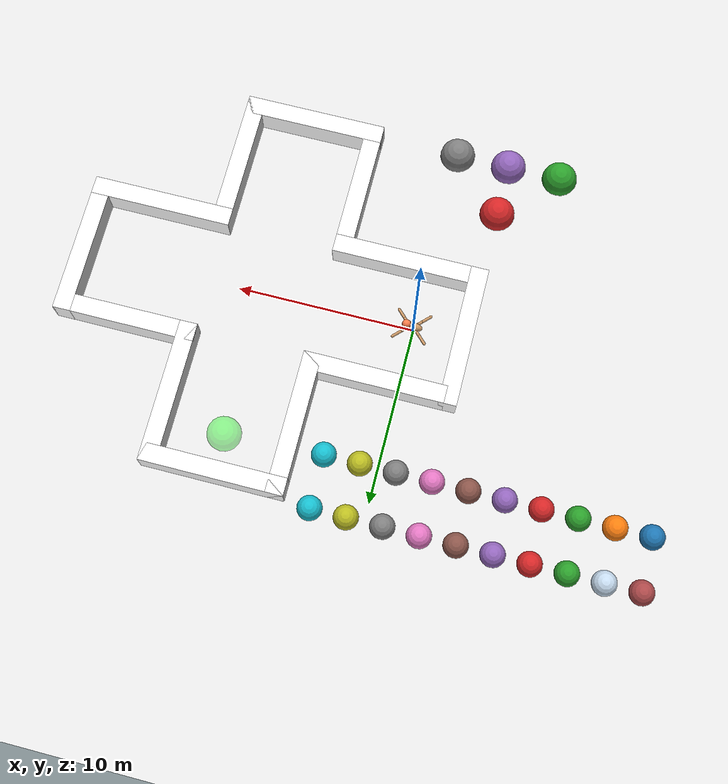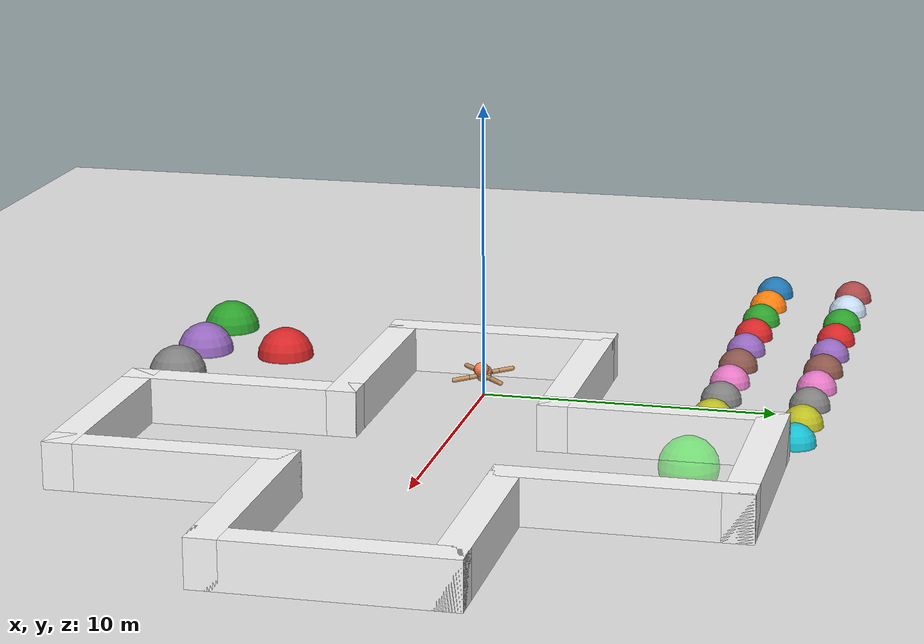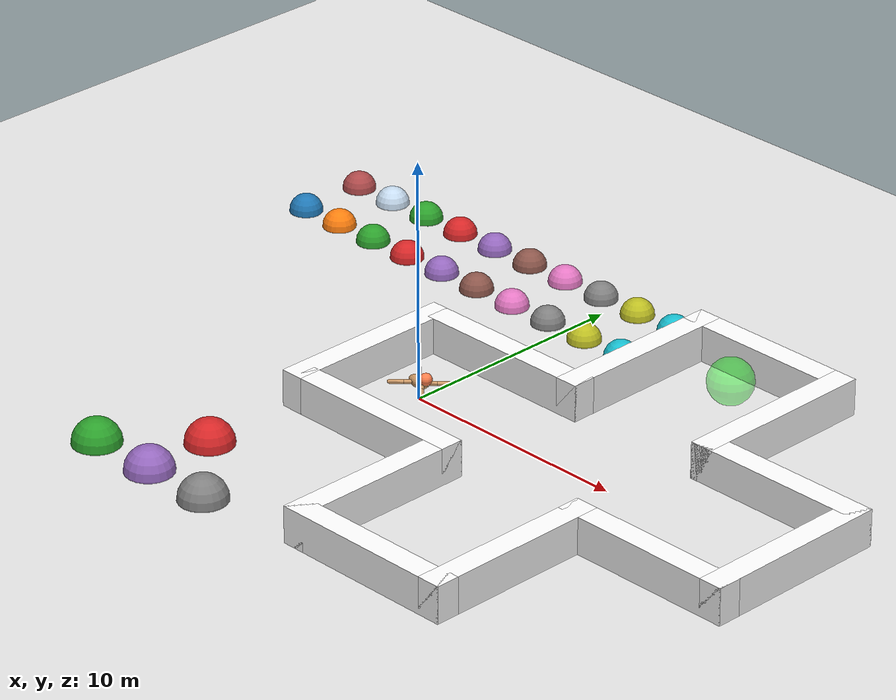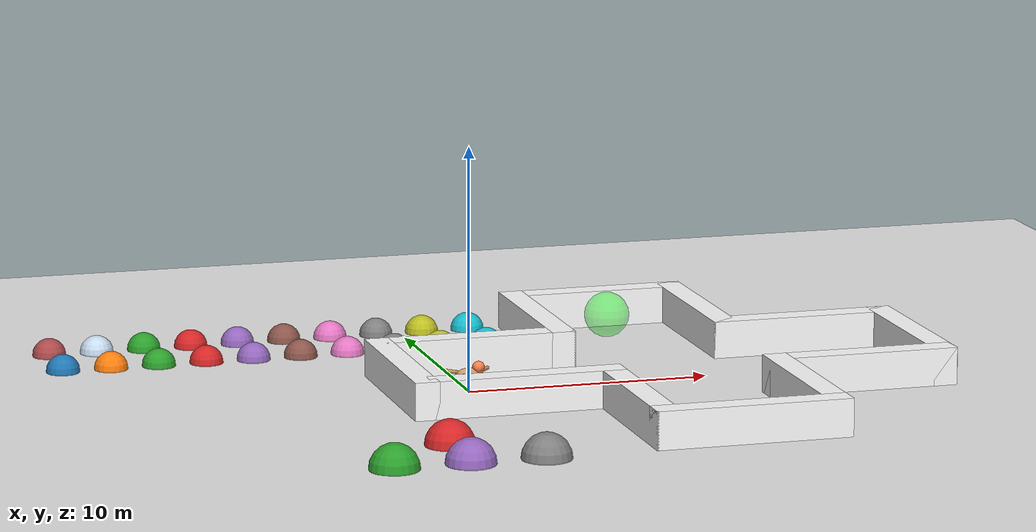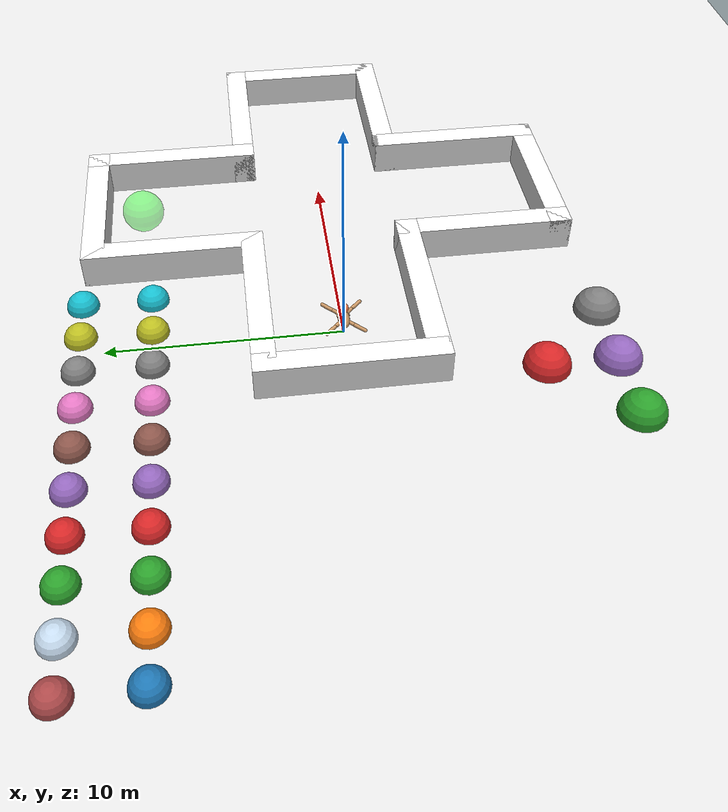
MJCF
<mujoco model="ant">
  <compiler angle="degree" coordinate="local" inertiafromgeom="true" settotalmass="40"/>
  <option integrator="RK4" timestep="0.005"/>
  <custom>
    <numeric data="0.0 0.0 0.55 1.0 0.0 0.0 0.0 0.0 1.0 0.0 -1.0 0.0 -1.0 0.0 1.0" name="init_qpos"/>
  </custom>
  <default>
    <joint armature="1" damping="1" limited="true"/>
    <geom conaffinity="1" contype="1" condim="3" density="5.0" friction="1 0.5 0.5" margin="0.01" rgba="0.8 0.6 0.4 1" material="geom"/>
  </default>
    <asset>
        <texture type="skybox" builtin="gradient" rgb1=".1 .12 .15" rgb2="0 0 0" width="100" height="100"/>
        <texture builtin="checker" height="100" name="texplane" rgb1=".35 .65 .65" rgb2=".0 .4 0.6" type="2d" width="100"/>
        <material name="MatPlane" reflectance="0.5" shininess="1" specular="1" texrepeat="25 25" texture="texplane"/>
        <texture builtin="flat" height="1278" mark="cross" markrgb="1 1 1" name="texgeom" random="0.01" rgb1="0.8 0.6 0.4" rgb2="0.8 0.6 0.4" type="cube" width="127"/>
        <material name="geom" texture="texgeom" texuniform="true"/>
    </asset>
  <worldbody>
    <light directional="true" cutoff="100" exponent="1" diffuse="1 1 1" specular=".1 .1 .1" pos="0 0 1.3" dir="-0 0 -1.3" />
    <geom name='floor' material="MatPlane" pos='0 0 0' size='40 40 40' type='plane' rgba='0.9 0.9 0.9 1' condim='3' group="1"/>

    <geom name="wall-0" pos=" 1.4  -3.5  .5" rgba="1. 1. 1. 1" size="4   0.5 1.0" type="box" material="" group="1" />
    <geom name="wall-1" pos="-2.8   0    .5" rgba="1. 1. 1. 1" size="0.5 4   1.0" type="box" material="" group="1" />
    <geom name="wall-2" pos=" 1.4   3.5  .5" rgba="1. 1. 1. 1" size="4   0.5 1.0" type="box" material="" group="1" />

    <geom name="wall-3" pos=" 4.9   7    .5" rgba="1. 1. 1. 1" size="0.5 4   1.0" type="box" material="" group="1" />
    <geom name="wall-4" pos=" 8.4  10.5  .5" rgba="1. 1. 1. 1" size="4   0.5 1.0" type="box" material="" group="1" />
    <geom name="wall-5" pos="11.9   7    .5" rgba="1. 1. 1. 1" size="0.5 4   1.0" type="box" material="" group="1" />

    <geom name="wall-6" pos="15.4  -3.5  .5" rgba="1. 1. 1. 1" size="4   0.5 1.0" type="box" material="" group="1" />
    <geom name="wall-7" pos="18.9   0    .5" rgba="1. 1. 1. 1" size="0.5 4   1.0" type="box" material="" group="1" />
    <geom name="wall-8" pos="15.4   3.5  .5" rgba="1. 1. 1. 1" size="4   0.5 1.0" type="box" material="" group="1" />

    <geom name="wall-9" pos="  4.9   -7    .5" rgba="1. 1. 1. 1" size="0.5 4   1.0" type="box" material="" group="1" />
    <geom name="wall-10" pos=" 8.4  -10.5  .5" rgba="1. 1. 1. 1" size="4   0.5 1.0" type="box" material="" group="1" />
    <geom name="wall-11" pos="11.9   -7    .5" rgba="1. 1. 1. 1" size="0.5 4   1.0" type="box" material="" group="1" />

    <body name="torso" pos="0 0 0.75">
      <geom name="torso_geom" pos="0 0 0" size="0.50 0.25 0.25" type="ellipsoid"/>
      <body name="head" pos="0.4 0 0.25">
        <geom name="head_geom" density="0.01" rgba="1.0 0.5 0.3 1" pos="0.0 0.0 0.0" size="0.25" type="sphere"/>
        <site name="head_site" pos="0.0 0.0 0.0" size="0.005" type="sphere"/>
      </body>
      <joint armature="0" damping="0" limited="false" margin="0.01" name="root" pos="0 0 0" type="free"/>
      <body name="front_left_leg" pos="0 0 0">
        <geom fromto="0.0 0.0 0.0 0.2 0.2 0.0" name="aux_1_geom" size="0.08" type="capsule"/>
        <body name="aux_1" pos="0.4 0.2 0">
          <joint axis="0 0 1" name="hip_1" pos="0.0 0.0 0.0" range="-30 30" type="hinge"/>
          <geom fromto="0.0 0.0 0.0 0.2 0.2 0.0" name="front_left_leg_geom" size="0.08" type="capsule"/>
          <site fromto="0.0 0.0 0.0 0.2 0.2 0.0" name="front_left_leg_site" size="0.005" type="capsule"/>
          <body pos="0.2 0.2 0">
            <joint axis="-1 1 0" name="ankle_1" pos="0.0 0.0 0.0" range="30 70" type="hinge"/>
            <geom fromto="0.0 0.0 0.0 0.4 0.4 0.0" name="front_left_ankle_geom" size="0.08" type="capsule"/>
            <site fromto="0.0 0.0 0.0 0.4 0.4 0.0" name="front_left_ankle_site" size="0.005" type="capsule"/>
          </body>
        </body>
      </body>
      <body name="front_right_leg" pos="0 0 0">
        <geom fromto="0.0 0.0 0.0 -0.2 0.2 0.0" name="aux_2_geom" size="0.08" type="capsule"/>
        <body name="aux_2" pos="-0.2 0.2 0">
          <joint axis="0 0 1" name="hip_2" pos="0.0 0.0 0.0" range="-30 30" type="hinge"/>
          <geom fromto="0.0 0.0 0.0 -0.2 0.2 0.0" name="front_right_leg_geom" size="0.08" type="capsule"/>
          <body pos="-0.2 0.2 0">
            <joint axis="1 1 0" name="ankle_2" pos="0.0 0.0 0.0" range="-70 -30" type="hinge"/>
            <geom fromto="0.0 0.0 0.0 -0.4 0.4 0.0" name="front_right_ankle_geom" size="0.08" type="capsule"/>
          </body>
        </body>
      </body>
      <body name="back_leg" pos="0 0 0">
        <geom fromto="0.0 0.0 0.0 -0.2 -0.2 0.0" name="aux_3_geom" size="0.08" type="capsule"/>
        <body name="aux_3" pos="-0.2 -0.2 0">
          <joint axis="0 0 1" name="hip_3" pos="0.0 0.0 0.0" range="-30 30" type="hinge"/>
          <geom fromto="0.0 0.0 0.0 -0.2 -0.2 0.0" name="left_back_leg_geom" size="0.08" type="capsule"/>
          <body pos="-0.2 -0.2 0">
            <joint axis="-1 1 0" name="ankle_3" pos="0.0 0.0 0.0" range="-70 -30" type="hinge"/>
            <geom fromto="0.0 0.0 0.0 -0.4 -0.4 0.0" name="left_back_ankle_geom" size="0.08" type="capsule"/>
          </body>
        </body>
      </body>
      <body name="right_back_leg" pos="0 0 0">
        <geom fromto="0.0 0.0 0.0 0.2 -0.2 0.0" name="aux_4_geom" size="0.08" type="capsule"/>
        <body name="aux_4" pos="0.4 -0.2 0">
          <joint axis="0 0 1" name="hip_4" pos="0.0 0.0 0.0" range="-30 30" type="hinge"/>
          <geom fromto="0.0 0.0 0.0 0.2 -0.2 0.0" name="right_back_leg_geom" size="0.08" type="capsule"/>
          <body pos="0.2 -0.2 0">
            <joint axis="1 1 0" name="ankle_4" pos="0.0 0.0 0.0" range="30 70" type="hinge"/>
            <geom fromto="0.0 0.0 0.0 0.4 -0.4 0.0" name="right_back_ankle_geom" size="0.08" type="capsule"/>
          </body>
        </body>
      </body>
    </body>
    <geom name="target" pos="8.4 8.4 0.85" rgba="0 1 0 0.4" size="0.95" type="sphere" group="1" contype="0" conaffinity="0" />

    <geom name="led-0" pos="-15  8 0.0" rgba="0.12156862745098039 0.4666666666666667 0.7058823529411765 1.0" size="0.7" type="sphere" group="1" contype="0" conaffinity="0" />
    <geom name="led-1" pos="-13  8 0.0" rgba="1.0 0.4980392156862745 0.054901960784313725 1.0" size="0.7" type="sphere" group="1" contype="0" conaffinity="0" />
    <geom name="led-2" pos="-11  8 0.0" rgba="0.17254901960784313 0.6274509803921569 0.17254901960784313 1.0" size="0.7" type="sphere" group="1" contype="0" conaffinity="0" />
    <geom name="led-3" pos=" -9  8 0.0" rgba="0.8392156862745098 0.15294117647058825 0.1568627450980392 1.0" size="0.7" type="sphere" group="1" contype="0" conaffinity="0" />
    <geom name="led-4" pos=" -7  8 0.0" rgba="0.5803921568627451 0.403921568627451 0.7411764705882353 1.0" size="0.7" type="sphere" group="1" contype="0" conaffinity="0" />
    <geom name="led-5" pos=" -5  8 0.0" rgba="0.5490196078431373 0.33725490196078434 0.29411764705882354 1.0" size="0.7" type="sphere" group="1" contype="0" conaffinity="0" />
    <geom name="led-6" pos=" -3  8 0.0" rgba="0.8901960784313725 0.4666666666666667 0.7607843137254902 1.0" size="0.7" type="sphere" group="1" contype="0" conaffinity="0" />
    <geom name="led-7" pos=" -1  8 0.0" rgba="0.4980392156862745 0.4980392156862745 0.4980392156862745 1.0" size="0.7" type="sphere" group="1" contype="0" conaffinity="0" />
    <geom name="led-8" pos="  1  8 0.0" rgba="0.7372549019607844 0.7411764705882353 0.13333333333333333 1.0" size="0.7" type="sphere" group="1" contype="0" conaffinity="0" />
    <geom name="led-9" pos="  3  8 0.0" rgba="0.09019607843137255 0.7450980392156863 0.8117647058823529 1.0" size="0.7" type="sphere" group="1" contype="0" conaffinity="0" />
    <geom name="led-10" pos="-15  11 0.0" rgba="0.6784313725490196 0.28627450980392155 0.2901960784313726 1.0" size="0.7" type="sphere" group="1" contype="0" conaffinity="0" />
    <geom name="led-11" pos="-13  11 0.0" rgba="0.7764705882352941 0.8588235294117647 0.9372549019607843 1.0" size="0.7" type="sphere" group="1" contype="0" conaffinity="0" />
    <geom name="led-12" pos="-11  11 0.0" rgba="0.17254901960784313 0.6274509803921569 0.17254901960784313 1.0" size="0.7" type="sphere" group="1" contype="0" conaffinity="0" />
    <geom name="led-13" pos=" -9  11 0.0" rgba="0.8392156862745098 0.15294117647058825 0.1568627450980392 1.0" size="0.7" type="sphere" group="1" contype="0" conaffinity="0" />
    <geom name="led-14" pos=" -7  11 0.0" rgba="0.5803921568627451 0.403921568627451 0.7411764705882353 1.0" size="0.7" type="sphere" group="1" contype="0" conaffinity="0" />
    <geom name="led-15" pos=" -5  11 0.0" rgba="0.5490196078431373 0.33725490196078434 0.29411764705882354 1.0" size="0.7" type="sphere" group="1" contype="0" conaffinity="0" />
    <geom name="led-16" pos=" -3  11 0.0" rgba="0.8901960784313725 0.4666666666666667 0.7607843137254902 1.0" size="0.7" type="sphere" group="1" contype="0" conaffinity="0" />
    <geom name="led-17" pos=" -1  11 0.0" rgba="0.4980392156862745 0.4980392156862745 0.4980392156862745 1.0" size="0.7" type="sphere" group="1" contype="0" conaffinity="0" />
    <geom name="led-18" pos="  1  11 0.0" rgba="0.7372549019607844 0.7411764705882353 0.13333333333333333 1.0" size="0.7" type="sphere" group="1" contype="0" conaffinity="0" />
    <geom name="led-19" pos="  3  11 0.0" rgba="0.09019607843137255 0.7450980392156863 0.8117647058823529 1.0" size="0.7" type="sphere" group="1" contype="0" conaffinity="0" />

    <geom name="led2-0" pos="  -3  -8 0.0" rgba="0.8392156862745098 0.15294117647058825 0.1568627450980392 1.0" size="1.0" type="sphere" group="1" contype="0" conaffinity="0" />
    <geom name="led2-1" pos="  -6 -11 0.0" rgba="0.17254901960784313 0.6274509803921569 0.17254901960784313 1.0" size="1.0" type="sphere" group="1" contype="0" conaffinity="0" />
    <geom name="led2-2" pos="   0 -11 0.0" rgba="0.4980392156862745 0.4980392156862745 0.4980392156862745 1.0" size="1.0" type="sphere" group="1" contype="0" conaffinity="0" />
    <geom name="led2-3" pos="  -3 -11 0.0" rgba="0.5803921568627451 0.403921568627451 0.7411764705882353 1.0" size="1.0" type="sphere" group="1" contype="0" conaffinity="0" />

  </worldbody>
  <actuator>
    <motor ctrllimited="true" ctrlrange="-1.0 1.0" joint="hip_4" gear="150"/>
    <motor ctrllimited="true" ctrlrange="-1.0 1.0" joint="ankle_4" gear="150"/>
    <motor ctrllimited="true" ctrlrange="-1.0 1.0" joint="hip_1" gear="150"/>
    <motor ctrllimited="true" ctrlrange="-1.0 1.0" joint="ankle_1" gear="150"/>
    <motor ctrllimited="true" ctrlrange="-1.0 1.0" joint="hip_2" gear="150"/>
    <motor ctrllimited="true" ctrlrange="-1.0 1.0" joint="ankle_2" gear="150"/>
    <motor ctrllimited="true" ctrlrange="-1.0 1.0" joint="hip_3" gear="150"/>
    <motor ctrllimited="true" ctrlrange="-1.0 1.0" joint="ankle_3" gear="150"/>
  </actuator>
  <sensor>
    <force name='force_head' site='head_site' />
    <force name='force_front_left_leg' site='front_left_leg_site' />
  </sensor>
</mujoco>
